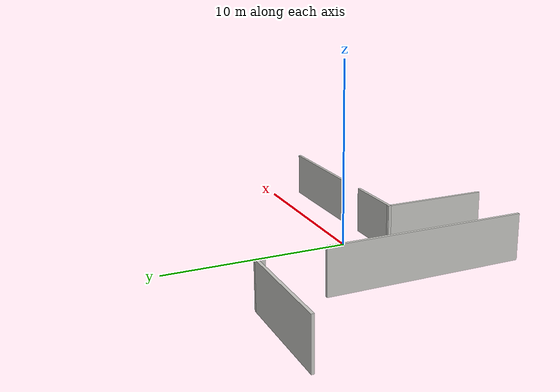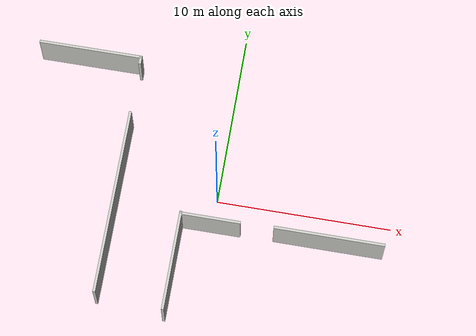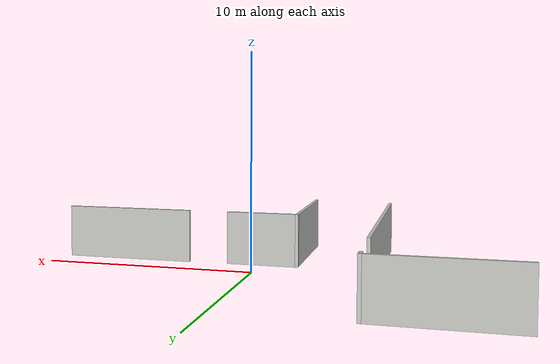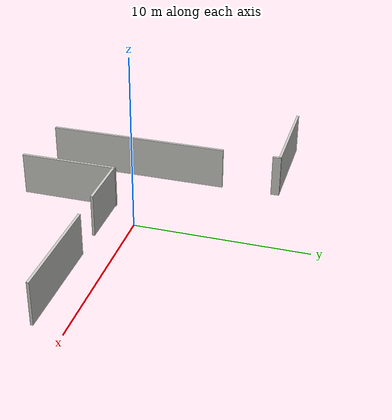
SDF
<?xml version='1.0'?>
<sdf version='1.6'>
  <model name='BuildingAdd'>
    <pose frame=''>-0.922369 -0.118931 0 0 -0 0</pose>
    <link name='Wall_0'>
      <collision name='Wall_0_Collision'>
        <geometry>
          <box>
            <size>6.25 0.15 2.5</size>
          </box>
        </geometry>
        <pose frame=''>0 0 1.25 0 -0 0</pose>
      </collision>
      <visual name='Wall_0_Visual'>
        <pose frame=''>0 0 1.25 0 -0 0</pose>
        <geometry>
          <box>
            <size>6.25 0.15 2.5</size>
          </box>
        </geometry>
        <material>
          <script>
            <uri>file://media/materials/scripts/gazebo.material</uri>
            <name>Gazebo/CeilingTiled</name>
          </script>
          <ambient>0.533333 0.541176 0.521569 1</ambient>
        </material>
        <meta>
          <layer>0</layer>
        </meta>
      </visual>
      <pose frame=''>7.54237 -1.60107 0 0 -0 3.14159</pose>
    </link>
    <link name='Wall_10'>
      <collision name='Wall_10_Collision'>
        <geometry>
          <box>
            <size>6 0.15 2.5</size>
          </box>
        </geometry>
        <pose frame=''>0 0 1.25 0 -0 0</pose>
      </collision>
      <visual name='Wall_10_Visual'>
        <pose frame=''>0 0 1.25 0 -0 0</pose>
        <geometry>
          <box>
            <size>6 0.15 2.5</size>
          </box>
        </geometry>
        <material>
          <script>
            <uri>file://media/materials/scripts/gazebo.material</uri>
            <name>Gazebo/CeilingTiled</name>
          </script>
          <ambient>0.533333 0.541176 0.521569 1</ambient>
        </material>
        <meta>
          <layer>0</layer>
        </meta>
      </visual>
      <pose frame=''>-7.66737 7.21686 0 0 -0 3.14159</pose>
    </link>
    <link name='Wall_12'>
      <collision name='Wall_12_Collision'>
        <geometry>
          <box>
            <size>0.5 0.15 2.5</size>
          </box>
        </geometry>
        <pose frame=''>0 0 1.25 0 -0 0</pose>
      </collision>
      <visual name='Wall_12_Visual'>
        <pose frame=''>0 0 1.25 0 -0 0</pose>
        <geometry>
          <box>
            <size>0.5 0.15 2.5</size>
          </box>
        </geometry>
        <material>
          <script>
            <uri>file://media/materials/scripts/gazebo.material</uri>
            <name>Gazebo/CeilingTiled</name>
          </script>
          <ambient>0.533333 0.541176 0.521569 1</ambient>
        </material>
        <meta>
          <layer>0</layer>
        </meta>
      </visual>
      <pose frame=''>-4.74237 7.04186 0 0 -0 -1.5708</pose>
    </link>
    <link name='Wall_3'>
      <collision name='Wall_3_Collision'>
        <geometry>
          <box>
            <size>3.46053 0.15 2.5</size>
          </box>
        </geometry>
        <pose frame=''>0 0 1.25 0 -0 0</pose>
      </collision>
      <visual name='Wall_3_Visual'>
        <pose frame=''>0 0 1.25 0 -0 0</pose>
        <geometry>
          <box>
            <size>3.46053 0.15 2.5</size>
          </box>
        </geometry>
        <material>
          <script>
            <uri>file://media/materials/scripts/gazebo.material</uri>
            <name>Gazebo/CeilingTiled</name>
          </script>
          <ambient>0.533333 0.541176 0.521569 1</ambient>
        </material>
        <meta>
          <layer>0</layer>
        </meta>
      </visual>
      <pose frame=''>0.827039 -1.65732 0 0 -0 0</pose>
    </link>
    <link name='Wall_5'>
      <collision name='Wall_5_Collision'>
        <geometry>
          <box>
            <size>5.75 0.15 2.5</size>
          </box>
        </geometry>
        <pose frame=''>0 0 1.25 0 -0 0</pose>
      </collision>
      <visual name='Wall_5_Visual'>
        <pose frame=''>0 0 1.25 0 -0 0</pose>
        <geometry>
          <box>
            <size>5.75 0.15 2.5</size>
          </box>
        </geometry>
        <material>
          <script>
            <uri>file://media/materials/scripts/gazebo.material</uri>
            <name>Gazebo/CeilingTiled</name>
          </script>
          <ambient>0.533333 0.541176 0.521569 1</ambient>
        </material>
        <meta>
          <layer>0</layer>
        </meta>
      </visual>
      <pose frame=''>-0.827734 -4.41686 0 0 -0 -1.5708</pose>
    </link>
    <link name='Wall_7'>
      <collision name='Wall_7_Collision'>
        <geometry>
          <box>
            <size>10.75 0.15 2.5</size>
          </box>
        </geometry>
        <pose frame=''>0 0 1.25 0 -0 0</pose>
      </collision>
      <visual name='Wall_7_Visual'>
        <pose frame=''>0 0 1.25 0 -0 0</pose>
        <geometry>
          <box>
            <size>10.75 0.15 2.5</size>
          </box>
        </geometry>
        <material>
          <script>
            <uri>file://media/materials/scripts/gazebo.material</uri>
            <name>Gazebo/CeilingTiled</name>
          </script>
          <ambient>0.533333 0.541176 0.521569 1</ambient>
        </material>
        <meta>
          <layer>0</layer>
        </meta>
      </visual>
      <pose frame=''>-4.71035 -1.55701 0 0 -0 -1.5708</pose>
    </link>
    <static>1</static>
  </model>
</sdf>
